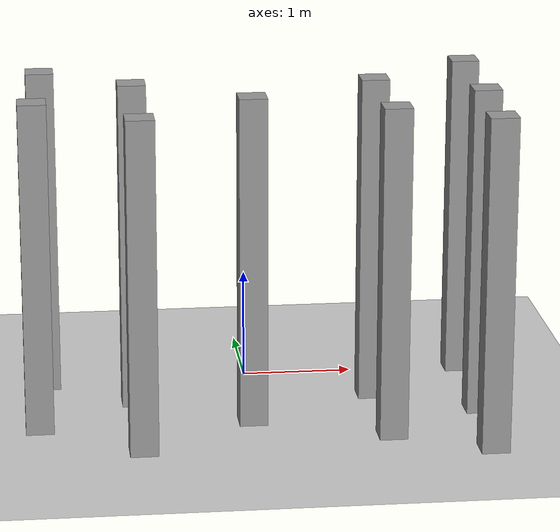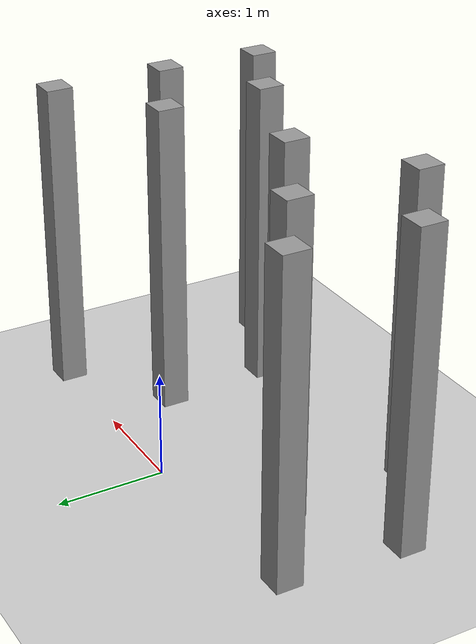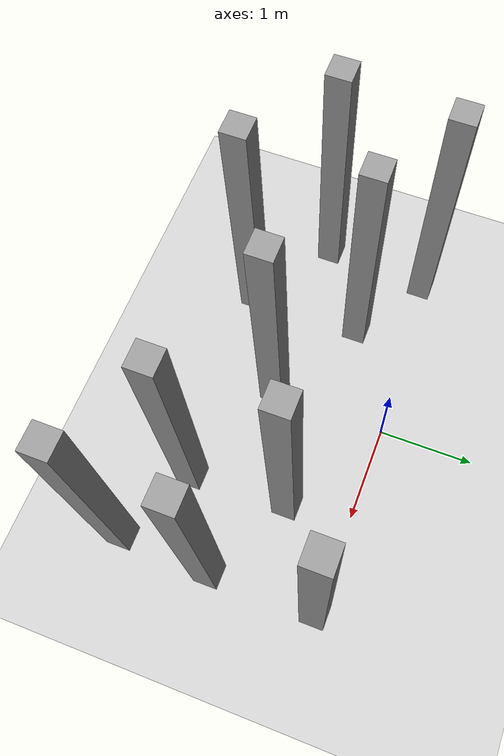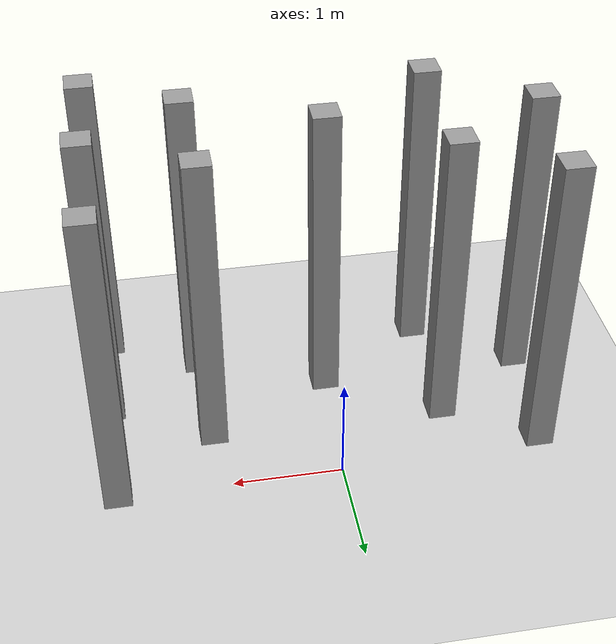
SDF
<sdf version="1.6">
 <world name="default">
  <model name="ground_plane">
   <static>1</static>
   <link name="link">
    <collision name="collision">
     <geometry><plane><normal>0 0 1</normal><size>100 100</size></plane></geometry>
     <surface><friction><ode><mu>100</mu><mu2>50</mu2></ode></friction></surface>
    </collision>
    <visual name="visual">
     <cast_shadows>0</cast_shadows>
     <geometry><plane><normal>0 0 1</normal><size>100 100</size></plane></geometry>
     <material>
      <script><uri>file://media/materials/scripts/gazebo.material</uri><name>Gazebo/Grey</name></script>
     </material>
    </visual>
   </link>
  </model>
  <model name="box_2_11">
   <link name="link">
    <pose>0 0 1 0 -0 0</pose>
    <inertial>
     <mass>1</mass>
     <inertia><ixx>5.16667</ixx><ixy>0</ixy><ixz>0</ixz><iyy>5.16667</iyy><iyz>0</iyz><izz>5.16667</izz></inertia>
     <pose>0 0 1 0 -0 0</pose>
    </inertial>
    <visual name="ModelPreview_4::link::visual_1">
     <geometry><box><size>0.25 0.25 3</size></box></geometry>
     <material>
      <script><name>Gazebo/Grey</name><uri>file://media/materials/scripts/gazebo.material</uri></script>
      <ambient>0.3 0.3 0.3 1</ambient>
      <diffuse>0.7 0.7 0.7 1</diffuse>
      <specular>0.01 0.01 0.01 1</specular>
      <emissive>0 0 0 1</emissive>
      <shader type="vertex"><normal_map>__default__</normal_map></shader>
     </material>
    </visual>
    <visual name="visual">
     <geometry><box><size>0.25 0.25 3</size></box></geometry>
     <material>
      <script><name>Gazebo/Grey</name><uri>file://media/materials/scripts/gazebo.material</uri></script>
      <ambient>0.3 0.3 0.3 1</ambient>
      <diffuse>0.7 0.7 0.7 1</diffuse>
      <specular>0.01 0.01 0.01 1</specular>
      <emissive>0 0 0 1</emissive>
      <shader type="vertex"><normal_map>__default__</normal_map></shader>
     </material>
    </visual>
    <collision name="collision">
     <geometry><box><size>0.25 0.25 3</size></box></geometry>
     <surface>
      <friction>
       <ode><mu>1</mu><mu2>1</mu2><fdir1>0 0 0</fdir1><slip1>0</slip1><slip2>0</slip2></ode>
       <torsional>
        <coefficient>1</coefficient>
        <patch_radius>0</patch_radius>
        <surface_radius>0</surface_radius>
        <use_patch_radius>1</use_patch_radius>
        <ode><slip>0</slip></ode>
       </torsional>
      </friction>
      <bounce><restitution_coefficient>0</restitution_coefficient><threshold>1e+06</threshold></bounce>
      <contact>
       <collide_without_contact>0</collide_without_contact>
       <collide_without_contact_bitmask>1</collide_without_contact_bitmask>
       <collide_bitmask>1</collide_bitmask>
       <ode>
        <soft_cfm>0</soft_cfm>
        <soft_erp>0.2</soft_erp>
        <kp>1e+13</kp>
        <kd>1</kd>
        <max_vel>0.01</max_vel>
        <min_depth>0</min_depth>
       </ode>
       <bullet>
        <split_impulse>1</split_impulse>
        <split_impulse_penetration_threshold>-0.01</split_impulse_penetration_threshold>
        <soft_cfm>0</soft_cfm>
        <soft_erp>0.2</soft_erp>
        <kp>1e+13</kp>
        <kd>1</kd>
       </bullet>
      </contact>
     </surface>
    </collision>
   </link>
   <static>0</static>
   <pose>-0.046444 -1.24226 0.5 1e-06 -2e-06 -0.000162</pose>
  </model>
  <model name="box_2_14">
   <link name="link">
    <pose>0 0 1 0 -0 0</pose>
    <inertial>
     <mass>1</mass>
     <inertia><ixx>5.16667</ixx><ixy>0</ixy><ixz>0</ixz><iyy>5.16667</iyy><iyz>0</iyz><izz>5.16667</izz></inertia>
     <pose>0 0 1 0 -0 0</pose>
    </inertial>
    <visual name="ModelPreview_4::link::visual_1">
     <geometry><box><size>0.25 0.25 3</size></box></geometry>
     <material>
      <script><name>Gazebo/Grey</name><uri>file://media/materials/scripts/gazebo.material</uri></script>
      <ambient>0.3 0.3 0.3 1</ambient>
      <diffuse>0.7 0.7 0.7 1</diffuse>
      <specular>0.01 0.01 0.01 1</specular>
      <emissive>0 0 0 1</emissive>
      <shader type="vertex"><normal_map>__default__</normal_map></shader>
     </material>
    </visual>
    <visual name="visual">
     <geometry><box><size>0.25 0.25 3</size></box></geometry>
     <material>
      <script><name>Gazebo/Grey</name><uri>file://media/materials/scripts/gazebo.material</uri></script>
      <ambient>0.3 0.3 0.3 1</ambient>
      <diffuse>0.7 0.7 0.7 1</diffuse>
      <specular>0.01 0.01 0.01 1</specular>
      <emissive>0 0 0 1</emissive>
      <shader type="vertex"><normal_map>__default__</normal_map></shader>
     </material>
    </visual>
    <collision name="collision">
     <geometry><box><size>0.25 0.25 3</size></box></geometry>
     <surface>
      <friction>
       <ode><mu>1</mu><mu2>1</mu2><fdir1>0 0 0</fdir1><slip1>0</slip1><slip2>0</slip2></ode>
       <torsional>
        <coefficient>1</coefficient>
        <patch_radius>0</patch_radius>
        <surface_radius>0</surface_radius>
        <use_patch_radius>1</use_patch_radius>
        <ode><slip>0</slip></ode>
       </torsional>
      </friction>
      <bounce><restitution_coefficient>0</restitution_coefficient><threshold>1e+06</threshold></bounce>
      <contact>
       <collide_without_contact>0</collide_without_contact>
       <collide_without_contact_bitmask>1</collide_without_contact_bitmask>
       <collide_bitmask>1</collide_bitmask>
       <ode>
        <soft_cfm>0</soft_cfm>
        <soft_erp>0.2</soft_erp>
        <kp>1e+13</kp>
        <kd>1</kd>
        <max_vel>0.01</max_vel>
        <min_depth>0</min_depth>
       </ode>
       <bullet>
        <split_impulse>1</split_impulse>
        <split_impulse_penetration_threshold>-0.01</split_impulse_penetration_threshold>
        <soft_cfm>0</soft_cfm>
        <soft_erp>0.2</soft_erp>
        <kp>1e+13</kp>
        <kd>1</kd>
       </bullet>
      </contact>
     </surface>
    </collision>
   </link>
   <static>0</static>
   <pose>1.14542 -1.70799 0.5 0 0 -0.00016</pose>
  </model>
  <model name="box_2_15">
   <link name="link">
    <pose>0 0 1 0 -0 0</pose>
    <inertial>
     <mass>1</mass>
     <inertia><ixx>5.16667</ixx><ixy>0</ixy><ixz>0</ixz><iyy>5.16667</iyy><iyz>0</iyz><izz>5.16667</izz></inertia>
     <pose>0 0 1 0 -0 0</pose>
    </inertial>
    <visual name="ModelPreview_4::link::visual_1">
     <geometry><box><size>0.25 0.25 3</size></box></geometry>
     <material>
      <script><name>Gazebo/Grey</name><uri>file://media/materials/scripts/gazebo.material</uri></script>
      <ambient>0.3 0.3 0.3 1</ambient>
      <diffuse>0.7 0.7 0.7 1</diffuse>
      <specular>0.01 0.01 0.01 1</specular>
      <emissive>0 0 0 1</emissive>
      <shader type="vertex"><normal_map>__default__</normal_map></shader>
     </material>
    </visual>
    <visual name="visual">
     <geometry><box><size>0.25 0.25 3</size></box></geometry>
     <material>
      <script><name>Gazebo/Grey</name><uri>file://media/materials/scripts/gazebo.material</uri></script>
      <ambient>0.3 0.3 0.3 1</ambient>
      <diffuse>0.7 0.7 0.7 1</diffuse>
      <specular>0.01 0.01 0.01 1</specular>
      <emissive>0 0 0 1</emissive>
      <shader type="vertex"><normal_map>__default__</normal_map></shader>
     </material>
    </visual>
    <collision name="collision">
     <geometry><box><size>0.25 0.25 3</size></box></geometry>
     <surface>
      <friction>
       <ode><mu>1</mu><mu2>1</mu2><fdir1>0 0 0</fdir1><slip1>0</slip1><slip2>0</slip2></ode>
       <torsional>
        <coefficient>1</coefficient>
        <patch_radius>0</patch_radius>
        <surface_radius>0</surface_radius>
        <use_patch_radius>1</use_patch_radius>
        <ode><slip>0</slip></ode>
       </torsional>
      </friction>
      <bounce><restitution_coefficient>0</restitution_coefficient><threshold>1e+06</threshold></bounce>
      <contact>
       <collide_without_contact>0</collide_without_contact>
       <collide_without_contact_bitmask>1</collide_without_contact_bitmask>
       <collide_bitmask>1</collide_bitmask>
       <ode>
        <soft_cfm>0</soft_cfm>
        <soft_erp>0.2</soft_erp>
        <kp>1e+13</kp>
        <kd>1</kd>
        <max_vel>0.01</max_vel>
        <min_depth>0</min_depth>
       </ode>
       <bullet>
        <split_impulse>1</split_impulse>
        <split_impulse_penetration_threshold>-0.01</split_impulse_penetration_threshold>
        <soft_cfm>0</soft_cfm>
        <soft_erp>0.2</soft_erp>
        <kp>1e+13</kp>
        <kd>1</kd>
       </bullet>
      </contact>
     </surface>
    </collision>
   </link>
   <static>0</static>
   <pose>1.10372 -0.662154 0.5 0 0 -0.000185</pose>
  </model>
  <model name="box_2_24">
   <link name="link">
    <pose>0 0 1 0 -0 0</pose>
    <inertial>
     <mass>1</mass>
     <inertia><ixx>5.16667</ixx><ixy>0</ixy><ixz>0</ixz><iyy>5.16667</iyy><iyz>0</iyz><izz>5.16667</izz></inertia>
     <pose>0 0 1 0 -0 0</pose>
    </inertial>
    <visual name="ModelPreview_4::link::visual_1">
     <geometry><box><size>0.25 0.25 3</size></box></geometry>
     <material>
      <script><name>Gazebo/Grey</name><uri>file://media/materials/scripts/gazebo.material</uri></script>
      <ambient>0.3 0.3 0.3 1</ambient>
      <diffuse>0.7 0.7 0.7 1</diffuse>
      <specular>0.01 0.01 0.01 1</specular>
      <emissive>0 0 0 1</emissive>
      <shader type="vertex"><normal_map>__default__</normal_map></shader>
     </material>
    </visual>
    <visual name="visual">
     <geometry><box><size>0.25 0.25 3</size></box></geometry>
     <material>
      <script><name>Gazebo/Grey</name><uri>file://media/materials/scripts/gazebo.material</uri></script>
      <ambient>0.3 0.3 0.3 1</ambient>
      <diffuse>0.7 0.7 0.7 1</diffuse>
      <specular>0.01 0.01 0.01 1</specular>
      <emissive>0 0 0 1</emissive>
      <shader type="vertex"><normal_map>__default__</normal_map></shader>
     </material>
    </visual>
    <collision name="collision">
     <geometry><box><size>0.25 0.25 3</size></box></geometry>
     <surface>
      <friction>
       <ode><mu>1</mu><mu2>1</mu2><fdir1>0 0 0</fdir1><slip1>0</slip1><slip2>0</slip2></ode>
       <torsional>
        <coefficient>1</coefficient>
        <patch_radius>0</patch_radius>
        <surface_radius>0</surface_radius>
        <use_patch_radius>1</use_patch_radius>
        <ode><slip>0</slip></ode>
       </torsional>
      </friction>
      <bounce><restitution_coefficient>0</restitution_coefficient><threshold>1e+06</threshold></bounce>
      <contact>
       <collide_without_contact>0</collide_without_contact>
       <collide_without_contact_bitmask>1</collide_without_contact_bitmask>
       <collide_bitmask>1</collide_bitmask>
       <ode>
        <soft_cfm>0</soft_cfm>
        <soft_erp>0.2</soft_erp>
        <kp>1e+13</kp>
        <kd>1</kd>
        <max_vel>0.01</max_vel>
        <min_depth>0</min_depth>
       </ode>
       <bullet>
        <split_impulse>1</split_impulse>
        <split_impulse_penetration_threshold>-0.01</split_impulse_penetration_threshold>
        <soft_cfm>0</soft_cfm>
        <soft_erp>0.2</soft_erp>
        <kp>1e+13</kp>
        <kd>1</kd>
       </bullet>
      </contact>
     </surface>
    </collision>
   </link>
   <static>0</static>
   <pose>-1.05981 -0.647166 0.5 0 0 -0.000128</pose>
  </model>
  <model name="box_2_25">
   <link name="link">
    <pose>0 0 1 0 -0 0</pose>
    <inertial>
     <mass>1</mass>
     <inertia><ixx>5.16667</ixx><ixy>0</ixy><ixz>0</ixz><iyy>5.16667</iyy><iyz>0</iyz><izz>5.16667</izz></inertia>
     <pose>0 0 1 0 -0 0</pose>
    </inertial>
    <visual name="ModelPreview_4::link::visual_1">
     <geometry><box><size>0.25 0.25 3</size></box></geometry>
     <material>
      <script><name>Gazebo/Grey</name><uri>file://media/materials/scripts/gazebo.material</uri></script>
      <ambient>0.3 0.3 0.3 1</ambient>
      <diffuse>0.7 0.7 0.7 1</diffuse>
      <specular>0.01 0.01 0.01 1</specular>
      <emissive>0 0 0 1</emissive>
      <shader type="vertex"><normal_map>__default__</normal_map></shader>
     </material>
    </visual>
    <visual name="visual">
     <geometry><box><size>0.25 0.25 3</size></box></geometry>
     <material>
      <script><name>Gazebo/Grey</name><uri>file://media/materials/scripts/gazebo.material</uri></script>
      <ambient>0.3 0.3 0.3 1</ambient>
      <diffuse>0.7 0.7 0.7 1</diffuse>
      <specular>0.01 0.01 0.01 1</specular>
      <emissive>0 0 0 1</emissive>
      <shader type="vertex"><normal_map>__default__</normal_map></shader>
     </material>
    </visual>
    <collision name="collision">
     <geometry><box><size>0.25 0.25 3</size></box></geometry>
     <surface>
      <friction>
       <ode><mu>1</mu><mu2>1</mu2><fdir1>0 0 0</fdir1><slip1>0</slip1><slip2>0</slip2></ode>
       <torsional>
        <coefficient>1</coefficient>
        <patch_radius>0</patch_radius>
        <surface_radius>0</surface_radius>
        <use_patch_radius>1</use_patch_radius>
        <ode><slip>0</slip></ode>
       </torsional>
      </friction>
      <bounce><restitution_coefficient>0</restitution_coefficient><threshold>1e+06</threshold></bounce>
      <contact>
       <collide_without_contact>0</collide_without_contact>
       <collide_without_contact_bitmask>1</collide_without_contact_bitmask>
       <collide_bitmask>1</collide_bitmask>
       <ode>
        <soft_cfm>0</soft_cfm>
        <soft_erp>0.2</soft_erp>
        <kp>1e+13</kp>
        <kd>1</kd>
        <max_vel>0.01</max_vel>
        <min_depth>0</min_depth>
       </ode>
       <bullet>
        <split_impulse>1</split_impulse>
        <split_impulse_penetration_threshold>-0.01</split_impulse_penetration_threshold>
        <soft_cfm>0</soft_cfm>
        <soft_erp>0.2</soft_erp>
        <kp>1e+13</kp>
        <kd>1</kd>
       </bullet>
      </contact>
     </surface>
    </collision>
   </link>
   <static>0</static>
   <pose>-1.06178 -1.8777 0.5 0 -1e-06 -0.0001</pose>
  </model>
  <model name="box_2_31">
   <link name="link">
    <pose>0 0 1 0 -0 0</pose>
    <inertial>
     <mass>1</mass>
     <inertia><ixx>5.16667</ixx><ixy>0</ixy><ixz>0</ixz><iyy>5.16667</iyy><iyz>0</iyz><izz>5.16667</izz></inertia>
     <pose>0 0 1 0 -0 0</pose>
    </inertial>
    <visual name="ModelPreview_4::link::visual_1">
     <geometry><box><size>0.25 0.25 3</size></box></geometry>
     <material>
      <script><name>Gazebo/Grey</name><uri>file://media/materials/scripts/gazebo.material</uri></script>
      <ambient>0.3 0.3 0.3 1</ambient>
      <diffuse>0.7 0.7 0.7 1</diffuse>
      <specular>0.01 0.01 0.01 1</specular>
      <emissive>0 0 0 1</emissive>
      <shader type="vertex"><normal_map>__default__</normal_map></shader>
     </material>
    </visual>
    <visual name="visual">
     <geometry><box><size>0.25 0.25 3</size></box></geometry>
     <material>
      <script><name>Gazebo/Grey</name><uri>file://media/materials/scripts/gazebo.material</uri></script>
      <ambient>0.3 0.3 0.3 1</ambient>
      <diffuse>0.7 0.7 0.7 1</diffuse>
      <specular>0.01 0.01 0.01 1</specular>
      <emissive>0 0 0 1</emissive>
      <shader type="vertex"><normal_map>__default__</normal_map></shader>
     </material>
    </visual>
    <collision name="collision">
     <geometry><box><size>0.25 0.25 3</size></box></geometry>
     <surface>
      <friction>
       <ode><mu>1</mu><mu2>1</mu2><fdir1>0 0 0</fdir1><slip1>0</slip1><slip2>0</slip2></ode>
       <torsional>
        <coefficient>1</coefficient>
        <patch_radius>0</patch_radius>
        <surface_radius>0</surface_radius>
        <use_patch_radius>1</use_patch_radius>
        <ode><slip>0</slip></ode>
       </torsional>
      </friction>
      <bounce><restitution_coefficient>0</restitution_coefficient><threshold>1e+06</threshold></bounce>
      <contact>
       <collide_without_contact>0</collide_without_contact>
       <collide_without_contact_bitmask>1</collide_without_contact_bitmask>
       <collide_bitmask>1</collide_bitmask>
       <ode>
        <soft_cfm>0</soft_cfm>
        <soft_erp>0.2</soft_erp>
        <kp>1e+13</kp>
        <kd>1</kd>
        <max_vel>0.01</max_vel>
        <min_depth>0</min_depth>
       </ode>
       <bullet>
        <split_impulse>1</split_impulse>
        <split_impulse_penetration_threshold>-0.01</split_impulse_penetration_threshold>
        <soft_cfm>0</soft_cfm>
        <soft_erp>0.2</soft_erp>
        <kp>1e+13</kp>
        <kd>1</kd>
       </bullet>
      </contact>
     </surface>
    </collision>
   </link>
   <static>0</static>
   <pose>-1.85513 -0.127428 0.5 0 0 -0.000154</pose>
  </model>
  <model name="box_2_32">
   <link name="link">
    <pose>0 0 1 0 -0 0</pose>
    <inertial>
     <mass>1</mass>
     <inertia><ixx>5.16667</ixx><ixy>0</ixy><ixz>0</ixz><iyy>5.16667</iyy><iyz>0</iyz><izz>5.16667</izz></inertia>
     <pose>0 0 1 0 -0 0</pose>
    </inertial>
    <visual name="ModelPreview_4::link::visual_1">
     <geometry><box><size>0.25 0.25 3</size></box></geometry>
     <material>
      <script><name>Gazebo/Grey</name><uri>file://media/materials/scripts/gazebo.material</uri></script>
      <ambient>0.3 0.3 0.3 1</ambient>
      <diffuse>0.7 0.7 0.7 1</diffuse>
      <specular>0.01 0.01 0.01 1</specular>
      <emissive>0 0 0 1</emissive>
      <shader type="vertex"><normal_map>__default__</normal_map></shader>
     </material>
    </visual>
    <visual name="visual">
     <geometry><box><size>0.25 0.25 3</size></box></geometry>
     <material>
      <script><name>Gazebo/Grey</name><uri>file://media/materials/scripts/gazebo.material</uri></script>
      <ambient>0.3 0.3 0.3 1</ambient>
      <diffuse>0.7 0.7 0.7 1</diffuse>
      <specular>0.01 0.01 0.01 1</specular>
      <emissive>0 0 0 1</emissive>
      <shader type="vertex"><normal_map>__default__</normal_map></shader>
     </material>
    </visual>
    <collision name="collision">
     <geometry><box><size>0.25 0.25 3</size></box></geometry>
     <surface>
      <friction>
       <ode><mu>1</mu><mu2>1</mu2><fdir1>0 0 0</fdir1><slip1>0</slip1><slip2>0</slip2></ode>
       <torsional>
        <coefficient>1</coefficient>
        <patch_radius>0</patch_radius>
        <surface_radius>0</surface_radius>
        <use_patch_radius>1</use_patch_radius>
        <ode><slip>0</slip></ode>
       </torsional>
      </friction>
      <bounce><restitution_coefficient>0</restitution_coefficient><threshold>1e+06</threshold></bounce>
      <contact>
       <collide_without_contact>0</collide_without_contact>
       <collide_without_contact_bitmask>1</collide_without_contact_bitmask>
       <collide_bitmask>1</collide_bitmask>
       <ode>
        <soft_cfm>0</soft_cfm>
        <soft_erp>0.2</soft_erp>
        <kp>1e+13</kp>
        <kd>1</kd>
        <max_vel>0.01</max_vel>
        <min_depth>0</min_depth>
       </ode>
       <bullet>
        <split_impulse>1</split_impulse>
        <split_impulse_penetration_threshold>-0.01</split_impulse_penetration_threshold>
        <soft_cfm>0</soft_cfm>
        <soft_erp>0.2</soft_erp>
        <kp>1e+13</kp>
        <kd>1</kd>
       </bullet>
      </contact>
     </surface>
    </collision>
   </link>
   <static>0</static>
   <pose>-1.94749 -1.25871 0.5 -0 2e-06 -0.000158</pose>
  </model>
  <model name="box_2_36">
   <link name="link">
    <pose>0 0 1 0 -0 0</pose>
    <inertial>
     <mass>1</mass>
     <inertia><ixx>5.16667</ixx><ixy>0</ixy><ixz>0</ixz><iyy>5.16667</iyy><iyz>0</iyz><izz>5.16667</izz></inertia>
     <pose>0 0 1 0 -0 0</pose>
    </inertial>
    <visual name="ModelPreview_4::link::visual_1">
     <geometry><box><size>0.25 0.25 3</size></box></geometry>
     <material>
      <script><name>Gazebo/Grey</name><uri>file://media/materials/scripts/gazebo.material</uri></script>
      <ambient>0.3 0.3 0.3 1</ambient>
      <diffuse>0.7 0.7 0.7 1</diffuse>
      <specular>0.01 0.01 0.01 1</specular>
      <emissive>0 0 0 1</emissive>
      <shader type="vertex"><normal_map>__default__</normal_map></shader>
     </material>
    </visual>
    <visual name="visual">
     <geometry><box><size>0.25 0.25 3</size></box></geometry>
     <material>
      <script><name>Gazebo/Grey</name><uri>file://media/materials/scripts/gazebo.material</uri></script>
      <ambient>0.3 0.3 0.3 1</ambient>
      <diffuse>0.7 0.7 0.7 1</diffuse>
      <specular>0.01 0.01 0.01 1</specular>
      <emissive>0 0 0 1</emissive>
      <shader type="vertex"><normal_map>__default__</normal_map></shader>
     </material>
    </visual>
    <collision name="collision">
     <geometry><box><size>0.25 0.25 3</size></box></geometry>
     <surface>
      <friction>
       <ode><mu>1</mu><mu2>1</mu2><fdir1>0 0 0</fdir1><slip1>0</slip1><slip2>0</slip2></ode>
       <torsional>
        <coefficient>1</coefficient>
        <patch_radius>0</patch_radius>
        <surface_radius>0</surface_radius>
        <use_patch_radius>1</use_patch_radius>
        <ode><slip>0</slip></ode>
       </torsional>
      </friction>
      <bounce><restitution_coefficient>0</restitution_coefficient><threshold>1e+06</threshold></bounce>
      <contact>
       <collide_without_contact>0</collide_without_contact>
       <collide_without_contact_bitmask>1</collide_without_contact_bitmask>
       <collide_bitmask>1</collide_bitmask>
       <ode>
        <soft_cfm>0</soft_cfm>
        <soft_erp>0.2</soft_erp>
        <kp>1e+13</kp>
        <kd>1</kd>
        <max_vel>0.01</max_vel>
        <min_depth>0</min_depth>
       </ode>
       <bullet>
        <split_impulse>1</split_impulse>
        <split_impulse_penetration_threshold>-0.01</split_impulse_penetration_threshold>
        <soft_cfm>0</soft_cfm>
        <soft_erp>0.2</soft_erp>
        <kp>1e+13</kp>
        <kd>1</kd>
       </bullet>
      </contact>
     </surface>
    </collision>
   </link>
   <static>0</static>
   <pose>1.97661 -2.12172 0.500025 0 -0.000198 -0.000152</pose>
  </model>
  <model name="box_2_37">
   <link name="link">
    <pose>0 0 1 0 -0 0</pose>
    <inertial>
     <mass>1</mass>
     <inertia><ixx>5.16667</ixx><ixy>0</ixy><ixz>0</ixz><iyy>5.16667</iyy><iyz>0</iyz><izz>5.16667</izz></inertia>
     <pose>0 0 1 0 -0 0</pose>
    </inertial>
    <visual name="ModelPreview_4::link::visual_1">
     <geometry><box><size>0.25 0.25 3</size></box></geometry>
     <material>
      <script><name>Gazebo/Grey</name><uri>file://media/materials/scripts/gazebo.material</uri></script>
      <ambient>0.3 0.3 0.3 1</ambient>
      <diffuse>0.7 0.7 0.7 1</diffuse>
      <specular>0.01 0.01 0.01 1</specular>
      <emissive>0 0 0 1</emissive>
      <shader type="vertex"><normal_map>__default__</normal_map></shader>
     </material>
    </visual>
    <visual name="visual">
     <geometry><box><size>0.25 0.25 3</size></box></geometry>
     <material>
      <script><name>Gazebo/Grey</name><uri>file://media/materials/scripts/gazebo.material</uri></script>
      <ambient>0.3 0.3 0.3 1</ambient>
      <diffuse>0.7 0.7 0.7 1</diffuse>
      <specular>0.01 0.01 0.01 1</specular>
      <emissive>0 0 0 1</emissive>
      <shader type="vertex"><normal_map>__default__</normal_map></shader>
     </material>
    </visual>
    <collision name="collision">
     <geometry><box><size>0.25 0.25 3</size></box></geometry>
     <surface>
      <friction>
       <ode><mu>1</mu><mu2>1</mu2><fdir1>0 0 0</fdir1><slip1>0</slip1><slip2>0</slip2></ode>
       <torsional>
        <coefficient>1</coefficient>
        <patch_radius>0</patch_radius>
        <surface_radius>0</surface_radius>
        <use_patch_radius>1</use_patch_radius>
        <ode><slip>0</slip></ode>
       </torsional>
      </friction>
      <bounce><restitution_coefficient>0</restitution_coefficient><threshold>1e+06</threshold></bounce>
      <contact>
       <collide_without_contact>0</collide_without_contact>
       <collide_without_contact_bitmask>1</collide_without_contact_bitmask>
       <collide_bitmask>1</collide_bitmask>
       <ode>
        <soft_cfm>0</soft_cfm>
        <soft_erp>0.2</soft_erp>
        <kp>1e+13</kp>
        <kd>1</kd>
        <max_vel>0.01</max_vel>
        <min_depth>0</min_depth>
       </ode>
       <bullet>
        <split_impulse>1</split_impulse>
        <split_impulse_penetration_threshold>-0.01</split_impulse_penetration_threshold>
        <soft_cfm>0</soft_cfm>
        <soft_erp>0.2</soft_erp>
        <kp>1e+13</kp>
        <kd>1</kd>
       </bullet>
      </contact>
     </surface>
    </collision>
   </link>
   <static>0</static>
   <pose>2.02429 -1.14447 0.50004 0 -0.000319 -0.000157</pose>
  </model>
  <model name="box_2_38">
   <link name="link">
    <pose>0 0 1 0 -0 0</pose>
    <inertial>
     <mass>1</mass>
     <inertia><ixx>5.16667</ixx><ixy>0</ixy><ixz>0</ixz><iyy>5.16667</iyy><iyz>0</iyz><izz>5.16667</izz></inertia>
     <pose>0 0 1 0 -0 0</pose>
    </inertial>
    <visual name="ModelPreview_4::link::visual_1">
     <geometry><box><size>0.25 0.25 3</size></box></geometry>
     <material>
      <script><name>Gazebo/Grey</name><uri>file://media/materials/scripts/gazebo.material</uri></script>
      <ambient>0.3 0.3 0.3 1</ambient>
      <diffuse>0.7 0.7 0.7 1</diffuse>
      <specular>0.01 0.01 0.01 1</specular>
      <emissive>0 0 0 1</emissive>
      <shader type="vertex"><normal_map>__default__</normal_map></shader>
     </material>
    </visual>
    <visual name="visual">
     <geometry><box><size>0.25 0.25 3</size></box></geometry>
     <material>
      <script><name>Gazebo/Grey</name><uri>file://media/materials/scripts/gazebo.material</uri></script>
      <ambient>0.3 0.3 0.3 1</ambient>
      <diffuse>0.7 0.7 0.7 1</diffuse>
      <specular>0.01 0.01 0.01 1</specular>
      <emissive>0 0 0 1</emissive>
      <shader type="vertex"><normal_map>__default__</normal_map></shader>
     </material>
    </visual>
    <collision name="collision">
     <geometry><box><size>0.25 0.25 3</size></box></geometry>
     <surface>
      <friction>
       <ode><mu>1</mu><mu2>1</mu2><fdir1>0 0 0</fdir1><slip1>0</slip1><slip2>0</slip2></ode>
       <torsional>
        <coefficient>1</coefficient>
        <patch_radius>0</patch_radius>
        <surface_radius>0</surface_radius>
        <use_patch_radius>1</use_patch_radius>
        <ode><slip>0</slip></ode>
       </torsional>
      </friction>
      <bounce><restitution_coefficient>0</restitution_coefficient><threshold>1e+06</threshold></bounce>
      <contact>
       <collide_without_contact>0</collide_without_contact>
       <collide_without_contact_bitmask>1</collide_without_contact_bitmask>
       <collide_bitmask>1</collide_bitmask>
       <ode>
        <soft_cfm>0</soft_cfm>
        <soft_erp>0.2</soft_erp>
        <kp>1e+13</kp>
        <kd>1</kd>
        <max_vel>0.01</max_vel>
        <min_depth>0</min_depth>
       </ode>
       <bullet>
        <split_impulse>1</split_impulse>
        <split_impulse_penetration_threshold>-0.01</split_impulse_penetration_threshold>
        <soft_cfm>0</soft_cfm>
        <soft_erp>0.2</soft_erp>
        <kp>1e+13</kp>
        <kd>1</kd>
       </bullet>
      </contact>
     </surface>
    </collision>
   </link>
   <static>0</static>
   <pose>2.0258 -0.018314 0.500072 -3.2e-05 0.000616 -0.000149</pose>
  </model>
 </world>
</sdf>
